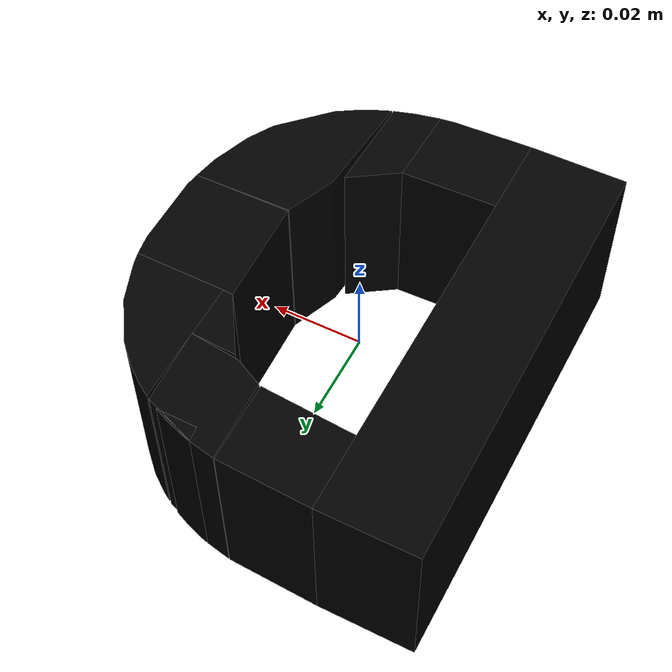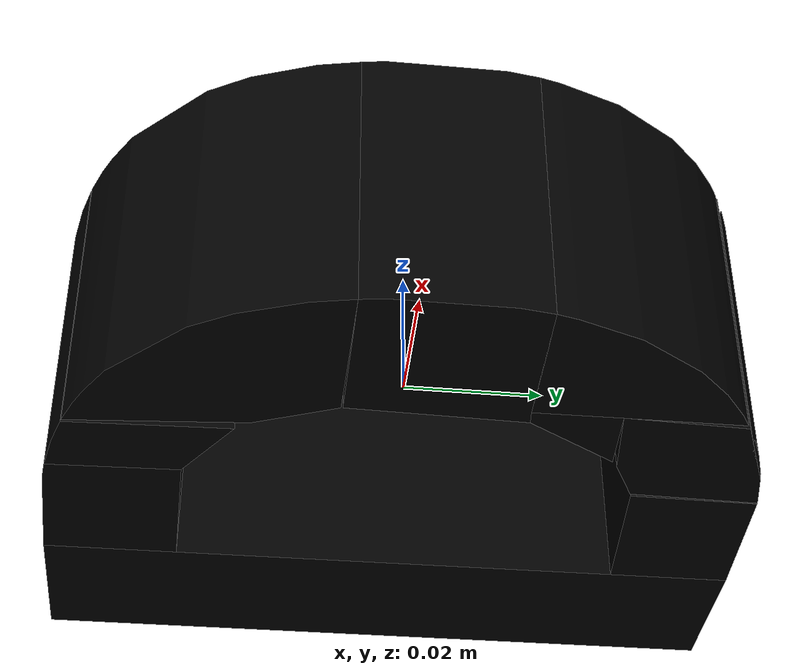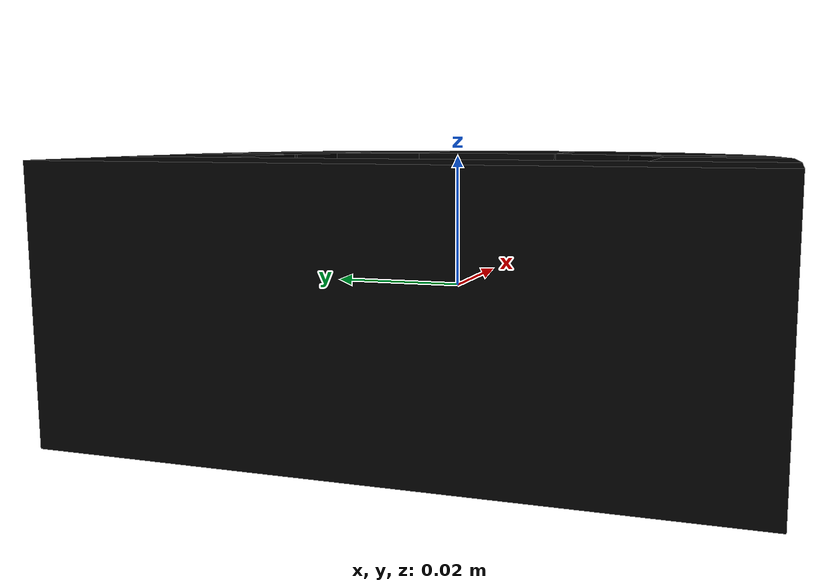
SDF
<?xml version='1.0' encoding='UTF-8'?>
<!-- This SDF was autogenerated by obj_to_drake_sdf.py -->
<sdf version="1.7">
  <model name="small_d">
    <link name="body">
      <inertial>
        <pose>0 0 0 0 0 0</pose>
        <mass>1</mass>
        <inertia>
          <ixx>0.0010339911</ixx>
          <iyy>0.00079213579</iyy>
          <izz>0.0015594602</izz>
          <ixy>-3.9553444e-06</ixy>
          <ixz>-5.9361487e-21</ixz>
          <iyz>-3.635904e-21</iyz>
        </inertia>
      </inertial>
      <visual name="convex_0">
        <pose>0 0 0 0 0 0</pose>
        <geometry>
          <mesh>
            <uri>small_d_convex_0.obj</uri>
          </mesh>
        </geometry>
        <material>
          <diffuse>0 0 0 1</diffuse>
        </material>
      </visual>
      <collision name="convex_0_volume">
        <pose>0 0 0 0 0 0</pose>
        <geometry>
          <mesh>
            <uri>small_d_convex_0.obj</uri>
          </mesh>
        </geometry>
        <drake:proximity_properties xmlns:drake="uri:drake">
          <drake:compliant_hydroelastic/>
          <drake:hydroelastic_modulus> 3.0e7 </drake:hydroelastic_modulus>
          <drake:mesh_resolution_hint> 0.18 </drake:mesh_resolution_hint>
          <drake:hunt_crossley_dissipation>10</drake:hunt_crossley_dissipation>
          <drake:mu_dynamic>0.3</drake:mu_dynamic>
        </drake:proximity_properties>
      </collision>
      <visual name="convex_1">
        <pose>0 0 0 0 0 0</pose>
        <geometry>
          <mesh>
            <uri>small_d_convex_1.obj</uri>
          </mesh>
        </geometry>
        <material>
          <diffuse>0 0 0 1</diffuse>
        </material>
      </visual>
      <collision name="convex_1_volume">
        <pose>0 0 0 0 0 0</pose>
        <geometry>
          <mesh>
            <uri>small_d_convex_1.obj</uri>
          </mesh>
        </geometry>
        <drake:proximity_properties xmlns:drake="uri:drake">
          <drake:compliant_hydroelastic/>
          <drake:hydroelastic_modulus> 3.0e7 </drake:hydroelastic_modulus>
          <drake:mesh_resolution_hint> 0.18 </drake:mesh_resolution_hint>
          <drake:hunt_crossley_dissipation>10</drake:hunt_crossley_dissipation>
          <drake:mu_dynamic>0.3</drake:mu_dynamic>
        </drake:proximity_properties>
      </collision>
      <visual name="convex_2">
        <pose>0 0 0 0 0 0</pose>
        <geometry>
          <mesh>
            <uri>small_d_convex_2.obj</uri>
          </mesh>
        </geometry>
        <material>
          <diffuse>0 0 0 1</diffuse>
        </material>
      </visual>
      <collision name="convex_2_volume">
        <pose>0 0 0 0 0 0</pose>
        <geometry>
          <mesh>
            <uri>small_d_convex_2.obj</uri>
          </mesh>
        </geometry>
        <drake:proximity_properties xmlns:drake="uri:drake">
          <drake:compliant_hydroelastic/>
          <drake:hydroelastic_modulus> 3.0e7 </drake:hydroelastic_modulus>
          <drake:mesh_resolution_hint> 0.18 </drake:mesh_resolution_hint>
          <drake:hunt_crossley_dissipation>10</drake:hunt_crossley_dissipation>
          <drake:mu_dynamic>0.3</drake:mu_dynamic>
        </drake:proximity_properties>
      </collision>
      <visual name="convex_3">
        <pose>0 0 0 0 0 0</pose>
        <geometry>
          <mesh>
            <uri>small_d_convex_3.obj</uri>
          </mesh>
        </geometry>
        <material>
          <diffuse>0 0 0 1</diffuse>
        </material>
      </visual>
      <collision name="convex_3_volume">
        <pose>0 0 0 0 0 0</pose>
        <geometry>
          <mesh>
            <uri>small_d_convex_3.obj</uri>
          </mesh>
        </geometry>
        <drake:proximity_properties xmlns:drake="uri:drake">
          <drake:compliant_hydroelastic/>
          <drake:hydroelastic_modulus> 3.0e7 </drake:hydroelastic_modulus>
          <drake:mesh_resolution_hint> 0.18 </drake:mesh_resolution_hint>
          <drake:hunt_crossley_dissipation>10</drake:hunt_crossley_dissipation>
          <drake:mu_dynamic>0.3</drake:mu_dynamic>
        </drake:proximity_properties>
      </collision>
      <visual name="convex_4">
        <pose>0 0 0 0 0 0</pose>
        <geometry>
          <mesh>
            <uri>small_d_convex_4.obj</uri>
          </mesh>
        </geometry>
        <material>
          <diffuse>0 0 0 1</diffuse>
        </material>
      </visual>
      <collision name="convex_4_volume">
        <pose>0 0 0 0 0 0</pose>
        <geometry>
          <mesh>
            <uri>small_d_convex_4.obj</uri>
          </mesh>
        </geometry>
        <drake:proximity_properties xmlns:drake="uri:drake">
          <drake:compliant_hydroelastic/>
          <drake:hydroelastic_modulus> 3.0e7 </drake:hydroelastic_modulus>
          <drake:mesh_resolution_hint> 0.18 </drake:mesh_resolution_hint>
          <drake:hunt_crossley_dissipation>10</drake:hunt_crossley_dissipation>
          <drake:mu_dynamic>0.3</drake:mu_dynamic>
        </drake:proximity_properties>
      </collision>
      <visual name="convex_5">
        <pose>0 0 0 0 0 0</pose>
        <geometry>
          <mesh>
            <uri>small_d_convex_5.obj</uri>
          </mesh>
        </geometry>
        <material>
          <diffuse>0 0 0 1</diffuse>
        </material>
      </visual>
      <collision name="convex_5_volume">
        <pose>0 0 0 0 0 0</pose>
        <geometry>
          <mesh>
            <uri>small_d_convex_5.obj</uri>
          </mesh>
        </geometry>
        <drake:proximity_properties xmlns:drake="uri:drake">
          <drake:compliant_hydroelastic/>
          <drake:hydroelastic_modulus> 3.0e7 </drake:hydroelastic_modulus>
          <drake:mesh_resolution_hint> 0.18 </drake:mesh_resolution_hint>
          <drake:hunt_crossley_dissipation>10</drake:hunt_crossley_dissipation>
          <drake:mu_dynamic>0.3</drake:mu_dynamic>
        </drake:proximity_properties>
      </collision>
      <visual name="convex_6">
        <pose>0 0 0 0 0 0</pose>
        <geometry>
          <mesh>
            <uri>small_d_convex_6.obj</uri>
          </mesh>
        </geometry>
        <material>
          <diffuse>0 0 0 1</diffuse>
        </material>
      </visual>
      <collision name="convex_6_volume">
        <pose>0 0 0 0 0 0</pose>
        <geometry>
          <mesh>
            <uri>small_d_convex_6.obj</uri>
          </mesh>
        </geometry>
        <drake:proximity_properties xmlns:drake="uri:drake">
          <drake:compliant_hydroelastic/>
          <drake:hydroelastic_modulus> 3.0e7 </drake:hydroelastic_modulus>
          <drake:mesh_resolution_hint> 0.18 </drake:mesh_resolution_hint>
          <drake:hunt_crossley_dissipation>10</drake:hunt_crossley_dissipation>
          <drake:mu_dynamic>0.3</drake:mu_dynamic>
        </drake:proximity_properties>
      </collision>
      <visual name="convex_7">
        <pose>0 0 0 0 0 0</pose>
        <geometry>
          <mesh>
            <uri>small_d_convex_7.obj</uri>
          </mesh>
        </geometry>
        <material>
          <diffuse>0 0 0 1</diffuse>
        </material>
      </visual>
      <collision name="convex_7_volume">
        <pose>0 0 0 0 0 0</pose>
        <geometry>
          <mesh>
            <uri>small_d_convex_7.obj</uri>
          </mesh>
        </geometry>
        <drake:proximity_properties xmlns:drake="uri:drake">
          <drake:compliant_hydroelastic/>
          <drake:hydroelastic_modulus> 3.0e7 </drake:hydroelastic_modulus>
          <drake:mesh_resolution_hint> 0.18 </drake:mesh_resolution_hint>
          <drake:hunt_crossley_dissipation>10</drake:hunt_crossley_dissipation>
          <drake:mu_dynamic>0.3</drake:mu_dynamic>
        </drake:proximity_properties>
      </collision>
      <visual name="convex_8">
        <pose>0 0 0 0 0 0</pose>
        <geometry>
          <mesh>
            <uri>small_d_convex_8.obj</uri>
          </mesh>
        </geometry>
        <material>
          <diffuse>0 0 0 1</diffuse>
        </material>
      </visual>
      <collision name="convex_8_volume">
        <pose>0 0 0 0 0 0</pose>
        <geometry>
          <mesh>
            <uri>small_d_convex_8.obj</uri>
          </mesh>
        </geometry>
        <drake:proximity_properties xmlns:drake="uri:drake">
          <drake:compliant_hydroelastic/>
          <drake:hydroelastic_modulus> 3.0e7 </drake:hydroelastic_modulus>
          <drake:mesh_resolution_hint> 0.18 </drake:mesh_resolution_hint>
          <drake:hunt_crossley_dissipation>10</drake:hunt_crossley_dissipation>
          <drake:mu_dynamic>0.3</drake:mu_dynamic>
        </drake:proximity_properties>
      </collision>
      <visual name="convex_9">
        <pose>0 0 0 0 0 0</pose>
        <geometry>
          <mesh>
            <uri>small_d_convex_9.obj</uri>
          </mesh>
        </geometry>
        <material>
          <diffuse>0 0 0 1</diffuse>
        </material>
      </visual>
      <collision name="convex_9_volume">
        <pose>0 0 0 0 0 0</pose>
        <geometry>
          <mesh>
            <uri>small_d_convex_9.obj</uri>
          </mesh>
        </geometry>
        <drake:proximity_properties xmlns:drake="uri:drake">
          <drake:compliant_hydroelastic/>
          <drake:hydroelastic_modulus> 3.0e7 </drake:hydroelastic_modulus>
          <drake:mesh_resolution_hint> 0.18 </drake:mesh_resolution_hint>
          <drake:hunt_crossley_dissipation>10</drake:hunt_crossley_dissipation>
          <drake:mu_dynamic>0.3</drake:mu_dynamic>
        </drake:proximity_properties>
      </collision>
    </link>
  </model>
</sdf>
